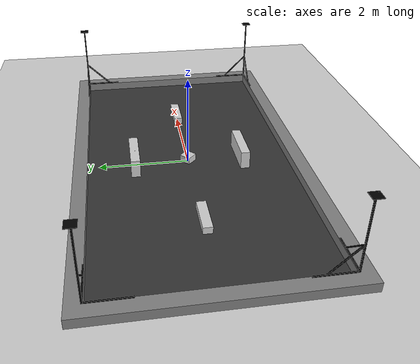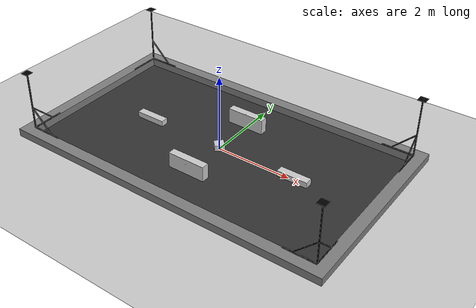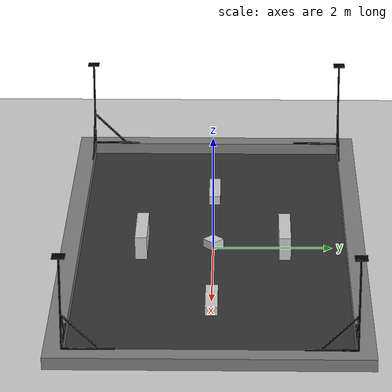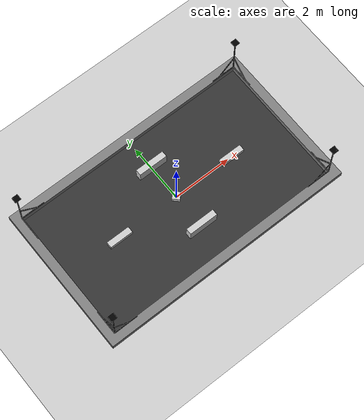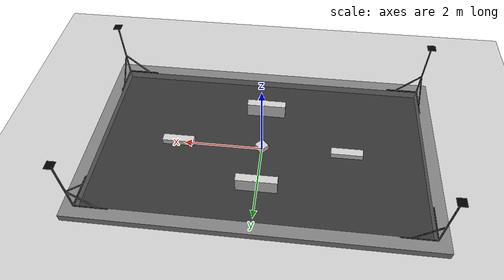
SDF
<?xml version="1.0" ?>
<sdf version="1.7">
    <world name="default">
        <!-- Physics -->
        <plugin
            filename="libignition-gazebo-physics-system.so"
            name="ignition::gazebo::systems::Physics"></plugin>
        <!-- Forwards simulation state to the GUI -->
        <plugin
            filename="libignition-gazebo-scene-broadcaster-system.so"
            name="ignition::gazebo::systems::SceneBroadcaster"></plugin>
        <!-- Processes user commands, like translate and create -->
        <plugin
            filename="libignition-gazebo-user-commands-system.so"
            name="ignition::gazebo::systems::UserCommands"></plugin>
        <!-- Generates rendering sensor data -->
        <plugin
            filename="libignition-gazebo-sensors-system.so"
            name="ignition::gazebo::systems::Sensors">
            <!-- ogre2 not working with just the MESA_GL_VERSION_OVERRIDE=3.3 trick -->
            <render_engine>ogre2</render_engine>
        </plugin>
        <plugin filename="libignition-gazebo-imu-system.so"
        		name="ignition::gazebo::systems::Imu"></plugin>
        <!--light-->
        <light type="directional" name="sun">
            <cast_shadows>true</cast_shadows>
            <pose>0 0 10 0 0 0</pose>
            <diffuse>0.8 0.8 0.8 1</diffuse>
            <specular>0.2 0.2 0.2 1</specular>
            <attenuation>
                <range>1000</range>
                <constant>0.3</constant>
                <linear>0.01</linear>
                <quadratic>0.001</quadratic>
            </attenuation>
            <direction>-0.5 0.1 -0.9</direction>
        </light>
        <model name="ground_plane">
            <static>true</static>
            <link name="link">
                <collision name="collision">
                    <geometry>
                        <plane>
                            <normal>0 0 1</normal>
                            <size>100 100</size>
                        </plane>
                    </geometry>
                </collision>
                <visual name="visual">
                    <geometry>
                        <plane>
                            <normal>0 0 1</normal>
                            <size>100 100</size>
                        </plane>
                    </geometry>
                    <material>
                        <ambient>0.8 0.8 0.8 1</ambient>
                        <diffuse>0.8 0.8 0.8 1</diffuse>
                        <specular>0.8 0.8 0.8 1</specular>
                    </material>
                </visual>
            </link>
        </model>
        <!--competition area model-->
        <include>
            <uri>model://rmua22_battlefield</uri>
        </include>
    </world>
</sdf>

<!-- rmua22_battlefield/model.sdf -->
<!-- |    This document was autogenerated by xmacro4sdf from model.sdf.xmacro          | -->
<!-- |    EDITING THIS FILE BY HAND IS NOT RECOMMENDED                                 | -->
<sdf version="1.7">
	<model name="rmua22_battlefield">
		<pose>0 0 0.01 0 0 0</pose>
		<static>1</static>
		<link name="battlefield">
			<collision name="ground_collision">
				<geometry>
					<plane>
						<normal>0 0 1</normal>
						<size>8.5 5</size>
					</plane>
				</geometry>
			</collision>
			<visual name="ground_visual">
				<geometry>
					<plane>
						<normal>0 0 1</normal>
						<size>8.5 5</size>
					</plane>
				</geometry>
				<material>
					<ambient>0.2 0.2 0.2 1</ambient>
					<diffuse>0.2 0.2 0.2 1</diffuse>
				</material>
			</visual>
			<collision name="wall_collision">
				<geometry>
					<mesh>
						<uri>model://rmua22_battlefield/meshes/wall.STL</uri>
					</mesh>
				</geometry>
			</collision>
			<visual name="wall_visual">
				<geometry>
					<mesh>
						<uri>model://rmua22_battlefield/meshes/wall.STL</uri>
					</mesh>
				</geometry>
				<material>
					<ambient>0.5 0.5 0.5 1</ambient>
					<diffuse>0.5 0.5 0.5 1</diffuse>
				</material>
			</visual>
			<collision name="obstacle_collision">
				<geometry>
					<mesh>
						<uri>model://rmua22_battlefield/meshes/obstacle_boxes.STL</uri>
					</mesh>
				</geometry>
			</collision>
			<visual name="obstacle_visual">
				<geometry>
					<mesh>
						<uri>model://rmua22_battlefield/meshes/obstacle_boxes.STL</uri>
					</mesh>
				</geometry>
				<material>
					<ambient>0.8 0.8 0.8 1</ambient>
					<diffuse>0.8 0.8 0.8 1</diffuse>
				</material>
			</visual>
			<collision name="outpost_collision">
				<geometry>
					<mesh>
						<uri>model://rmua22_battlefield/meshes/outpost.STL</uri>
					</mesh>
				</geometry>
			</collision>
			<visual name="outpost_visual">
				<geometry>
					<mesh>
						<uri>model://rmua22_battlefield/meshes/outpost.STL</uri>
					</mesh>
				</geometry>
				<material>
					<ambient>0 0 0 1</ambient>
					<diffuse>0 0 0 1</diffuse>
				</material>
			</visual>
			<!--starting zone visual-->
			<visual name="red1_starting_zone_visual">
				<pose>3.54 1.74 0.001 0 0 1.57</pose>
				<geometry>
					<plane>
						<normal>0 0 1</normal>
						<size>1.0 1.0</size>
					</plane>
				</geometry>
				<material>
					<diffuse>1.0 1.0 1.0</diffuse>
					<pbr>
						<metal>
							<albedo_map>model://rmua22_battlefield/materials/textures/starting_zone_sticker_red.png</albedo_map>
						</metal>
					</pbr>
				</material>
			</visual>
			<visual name="red2_starting_zone_visual">
				<pose>3.54 -1.74 0.001 0 0 1.57</pose>
				<geometry>
					<plane>
						<normal>0 0 1</normal>
						<size>1.0 1.0</size>
					</plane>
				</geometry>
				<material>
					<diffuse>1.0 1.0 1.0</diffuse>
					<pbr>
						<metal>
							<albedo_map>model://rmua22_battlefield/materials/textures/starting_zone_sticker_red.png</albedo_map>
						</metal>
					</pbr>
				</material>
			</visual>
			<visual name="blue1_starting_zone_visual">
				<pose>-3.54 -1.74 0.001 0 0 -1.57</pose>
				<geometry>
					<plane>
						<normal>0 0 1</normal>
						<size>1.0 1.0</size>
					</plane>
				</geometry>
				<material>
					<diffuse>1.0 1.0 1.0</diffuse>
					<pbr>
						<metal>
							<albedo_map>model://rmua22_battlefield/materials/textures/starting_zone_sticker_blue.png</albedo_map>
						</metal>
					</pbr>
				</material>
			</visual>
			<visual name="blue2_starting_zone_visual">
				<pose>-3.54 1.74 0.001 0 0 -1.57</pose>
				<geometry>
					<plane>
						<normal>0 0 1</normal>
						<size>1.0 1.0</size>
					</plane>
				</geometry>
				<material>
					<diffuse>1.0 1.0 1.0</diffuse>
					<pbr>
						<metal>
							<albedo_map>model://rmua22_battlefield/materials/textures/starting_zone_sticker_blue.png</albedo_map>
						</metal>
					</pbr>
				</material>
			</visual>
		</link>
	</model>
</sdf>
